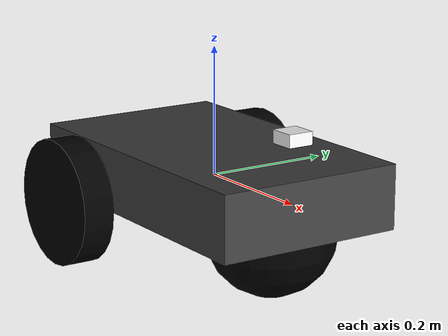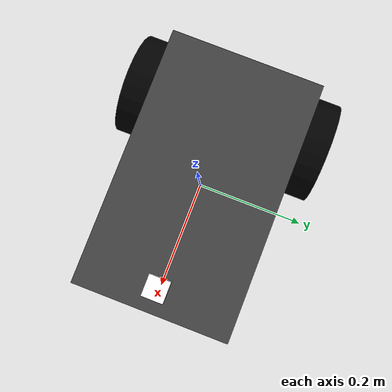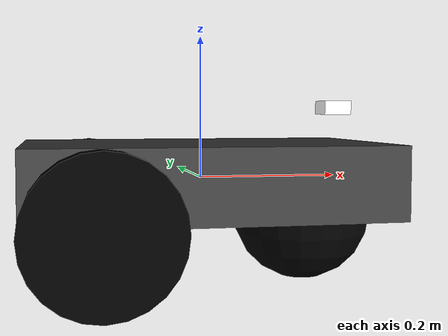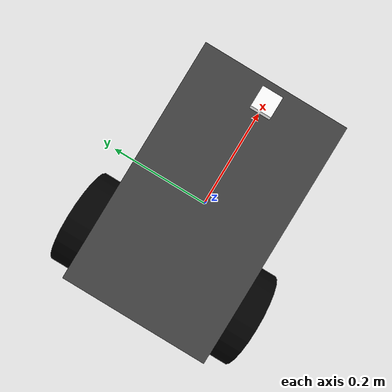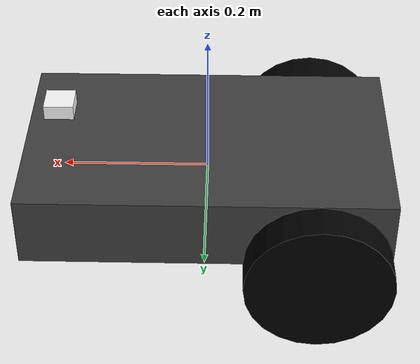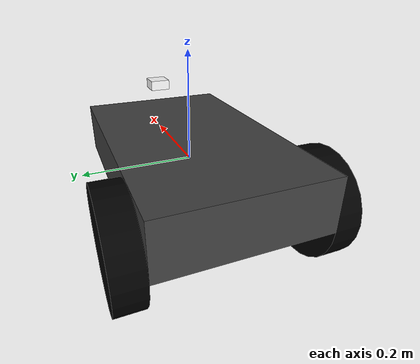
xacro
<?xml version="1.0"?>

<robot name="robot" xmlns:xacro="http://www.ros.org/wiki/xacro">

    <!-- Robot Parameters -->
    <xacro:property name="PI" value="3.14159265"/>
    <xacro:property name="body_length" value="0.5"/>
    <xacro:property name="body_width" value="0.3"/>
    <xacro:property name="body_height" value="0.1"/>
    <xacro:property name="body_density" value="7850.0"/> <!-- Steel -->
    <xacro:property name="body_mass" value="${body_density * body_length * body_height * body_width}"/>
    <xacro:property name="body_inertia_x" value="${1.0/12.0 * body_mass * (body_height*body_height + body_width*body_width)}"/>
    <xacro:property name="body_inertia_y" value="${1.0/12.0 * body_mass * (body_length*body_length + body_height*body_height)}"/>
    <xacro:property name="body_inertia_z" value="${1.0/12.0 * body_mass * (body_length*body_length + body_width*body_width)}"/>

    <xacro:property name="wheel_radius" value="0.1"/>
    <xacro:property name="wheel_width" value="0.05"/>
    <xacro:property name="wheel_separation" value="${body_width + wheel_width}"/>
    <xacro:property name="wheel_offset" value="${body_length/2 - wheel_radius}"/>
    <xacro:property name="wheel_density" value="900"/> <!-- Ruber -->
    <xacro:property name="wheel_mass" value="${wheel_density * PI * wheel_radius * wheel_radius * wheel_width}"/>
    <xacro:property name="wheel_inertia_x" value="${1.0/12.0 * wheel_mass * (3*wheel_radius*wheel_radius + wheel_width*wheel_width)}"/>
    <xacro:property name="wheel_inertia_y" value="${1.0/12.0 * wheel_mass * (3*wheel_radius*wheel_radius + wheel_width*wheel_width)}"/>
    <xacro:property name="wheel_inertia_z" value="${1.0/2.0 * wheel_mass * wheel_radius * wheel_radius}"/>

    <xacro:property name="caster_radius" value="0.1"/>
    <xacro:property name="caster_offset" value="${body_length/2 - caster_radius}"/>
    <xacro:property name="caster_density" value="0.1"/>
    <xacro:property name="caster_mass" value="${caster_density * 4.0/3.0 * PI * caster_radius * caster_radius * caster_radius}"/>
    <xacro:property name="caster_inertia_x" value="${2.0/5.0 * caster_mass * caster_radius * caster_radius}"/>
    <xacro:property name="caster_inertia_y" value="${2.0/5.0 * caster_mass * caster_radius * caster_radius}"/>
    <xacro:property name="caster_inertia_z" value="${2.0/5.0 * caster_mass * caster_radius * caster_radius}"/>

    <!-- Control Parameters -->
    <xacro:property name="max_linear_acceleration" value="10"/>

    <!-- Links -->

    <!-- Body Link -->
    <link name="body_link">
        <visual>
            <origin xyz="0.0 0.0 0.0" rpy="0.0 0.0 0.0"/>
            <geometry>
                <box size="${body_length} ${body_width} ${body_height}"/>
            </geometry>
            <material name="body_material">
                <color rgba="0.25 0.25 0.25 1.0"/>
            </material>
        </visual>
        <collision>
            <origin xyz="0.0 0.0 0.0" rpy="0.0 0.0 0.0"/>
            <geometry>
                <box size="${body_length} ${body_width} ${body_height}"/>
            </geometry>
        </collision>
        <inertial>
            <mass value="10"/>
            <inertia ixx="${body_inertia_x}" ixy="0.0" ixz="0.0" iyy="${body_inertia_y}" iyz="0" izz="${body_inertia_z}"/>
            <origin xyz="0 0 0" rpy="0 0 0"/>
        </inertial>
    </link>

    <!-- Left Wheel -->
    <link name="left_wheel_link">
        <visual>
            <origin xyz="0.0 0.0 0.0" rpy="1.570795 0.0 0.0"/>
            <geometry>
                <cylinder radius="${wheel_radius}" length="${wheel_width}"/>
            </geometry>
            <material name="wheel_material">
                <color rgba="0.0 0.0 0.0 1.0"/>
            </material>
        </visual>
        <collision>
            <origin xyz="0.0 0.0 0.0" rpy="1.570795 0.0 0.0"/>
            <geometry>
                <cylinder radius="${wheel_radius}" length="${wheel_width}"/>
            </geometry>
        </collision>
        <inertial>
            <mass value="2"/>
            <inertia ixx="${wheel_inertia_x}" ixy="0.0" ixz="0.0" iyy="${wheel_inertia_y}" iyz="0" izz="${wheel_inertia_z}"/>
            <origin xyz="0.0 0.0 0.0" rpy="1.570795 0.0 0.0"/>
        </inertial>
    </link>

    <!-- Right Wheel -->
    <link name="right_wheel_link">
        <visual>
            <origin xyz="0.0 0.0 0.0" rpy="1.570795 0.0 0.0"/>
            <geometry>
                <cylinder radius="${wheel_radius}" length="${wheel_width}"/>
            </geometry>
            <material name="wheel_material">
                <color rgba="0.0 0.0 0.0 1.0"/>
            </material>
        </visual>
        <collision>
            <origin xyz="0.0 0.0 0.0" rpy="1.570795 0.0 0.0"/>
            <geometry>
                <cylinder radius="${wheel_radius}" length="${wheel_width}"/>
            </geometry>
        </collision>
        <inertial>
            <mass value="2"/>
            <inertia ixx="${wheel_inertia_x}" ixy="0.0" ixz="0.0" iyy="${wheel_inertia_y}" iyz="0" izz="${wheel_inertia_z}"/>
            <origin xyz="0.0 0.0 0.0" rpy="1.570795 0.0 0.0"/>
        </inertial>
    </link>

    <!-- Caster Wheel -->
    <link name="caster_link">
        <visual>
            <origin xyz="0.0 0.0 0.0" rpy="0.0 0.0 0.0"/>
            <geometry>
                <sphere radius="${caster_radius}"/>
            </geometry>
            <material name="caster_material">
                <color rgba="0.0 0.0 0.0 1.0"/>
            </material>
        </visual>
        <collision>
            <origin xyz="0.0 0.0 0.0" rpy="0.0 0.0 0.0"/>
            <geometry>
                <sphere radius="${caster_radius}"/>
            </geometry>
        </collision>
        <inertial>
            <mass value="0.5"/>
            <inertia ixx="${caster_inertia_x}" ixy="0.0" ixz="0.0" iyy="${caster_inertia_y}" iyz="0" izz="${caster_inertia_z}"/>
            <origin xyz="0 0 0" rpy="0 0 0"/>
        </inertial>
    </link>

    <!-- Joints -->

    <!-- Left Wheel Joint -->
    <joint name="left_wheel_joint" type="continuous">
        <origin xyz="-${wheel_offset} ${wheel_separation/2} -${wheel_radius/2}" rpy="0 0 0"/>
        <parent link="body_link"/>
        <child link="left_wheel_link"/>
        <axis xyz="0 1 0"/>
        <limit effort="100" velocity="10.0"/>
        <dynamics damping="0.1" friction="0.1"/>
    </joint>

    <!-- Right Wheel Joint -->
    <joint name="right_wheel_joint" type="continuous">
        <origin xyz="-${wheel_offset} ${-wheel_separation/2} -${wheel_radius/2}" rpy="0 0 0"/>
        <parent link="body_link"/>
        <child link="right_wheel_link"/>
        <axis xyz="0 1 0"/>
        <limit effort="100" velocity="10.0"/>
        <dynamics damping="0.1" friction="0.1"/>
    </joint>

    <!-- Caster Wheel Joint (fixed) -->
    <joint name="caster_joint" type="fixed">
        <origin xyz="${caster_offset} 0 -${caster_radius/2}" rpy="0 0 0"/>
        <parent link="body_link"/>
        <child link="caster_link"/>
    </joint>

    <!-- Gazebo Parameters -->
    <gazebo reference="body_link">
        <mu1>1.0</mu1>
        <mu2>1.0</mu2>
    </gazebo>

    <gazebo reference="right_wheel_link">
        <mu1>1.0</mu1>
        <mu2>1.0</mu2>
    </gazebo>

    <gazebo reference="left_wheel_link">
        <mu1>1.0</mu1>
        <mu2>1.0</mu2>
    </gazebo>

    <gazebo reference="caster_link">
        <mu1>0.000001</mu1>
        <mu2>0.000001</mu2>
    </gazebo>

    <!-- Gazebo Plugins -->
    <gazebo>
        <plugin filename="gz-sim-diff-drive-system" name="gz::sim::systems::DiffDrive">
            <right_joint>right_wheel_joint</right_joint>
            <left_joint>left_wheel_joint</left_joint>
            <wheel_separation>${wheel_separation}</wheel_separation>
            <wheel_radius>${wheel_radius}</wheel_radius>
            <max_linear_acceleration>${max_linear_acceleration}</max_linear_acceleration>
            <odom_publish_frequency>100</odom_publish_frequency>
            <topic>cmd_vel</topic>
            <odom_topic>odom</odom_topic>
        </plugin>

        <plugin filename="gz-sim-joint-state-publisher-system" name="gz::sim::systems::JointStatePublisher">
            <topic>joint_states</topic>
            <joint_name>right_wheel_joint</joint_name>
            <joint_name>left_wheel_joint</joint_name>
        </plugin>
    </gazebo>

  <!--                SENSORS                     -->
  <link name="front_camera_link">
    <visual>
        <geometry>
        <box size="0.04 0.04 0.02"/>
        </geometry>
        <material name="magenta">
        <color rgba="1.0 1.0 1.0 1.0"/>
        </material>
    </visual>
    <inertial>
      <mass value="0.001" />
      <inertia ixx="0.001" ixy="0.0" ixz="0.0" iyy="0.001" iyz="0.0" izz="0.001" />
    </inertial>
  </link>
  <joint name="front_camera_joint" type="fixed">
    <parent link="body_link" />
    <child link="front_camera_link" />
    <origin xyz="0.20 0 0.1" rpy="0 0 0" />
  </joint>

  <!-- Gazebo Harmonic Sensor Definition -->
  <gazebo reference="front_camera_link">
    <sensor name="front_camera" type="camera">
        <frame_id>front_camera_link</frame_id>
      <pose>0 0 0 0 0 0</pose>
      <update_rate>30</update_rate>
      <visualize>true</visualize>
      <camera>
        <horizontal_fov>2.0944</horizontal_fov>
        <image>
          <width>854</width>
          <height>480</height>
          <format>R8G8B8</format>
        </image>
        <clip>
          <near>0.02</near>
          <far>300</far>
        </clip>
        <noise>
          <type>gaussian</type>
          <mean>0.0</mean>
          <stddev>0.007</stddev>
        </noise>
      </camera>
      <topic>front_camera/image_raw</topic>
    </sensor>
  </gazebo>

</robot>
